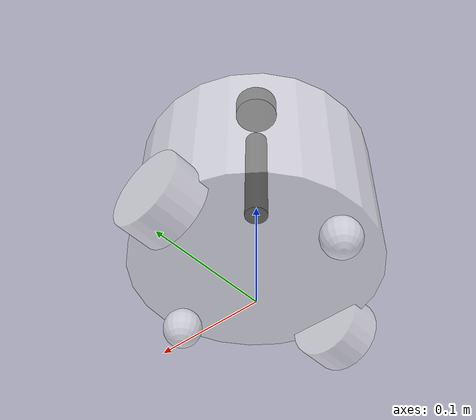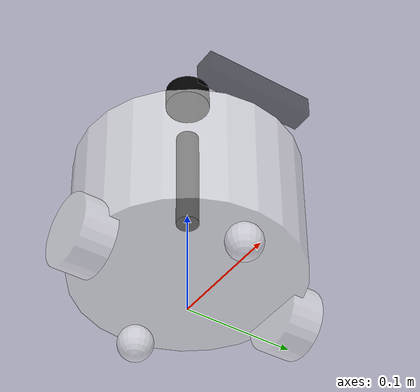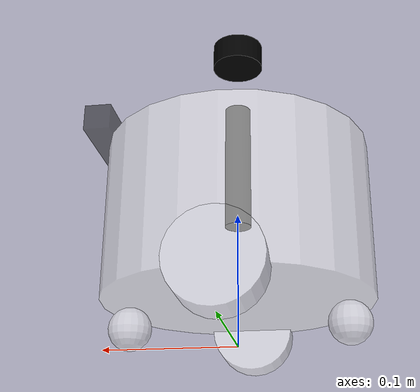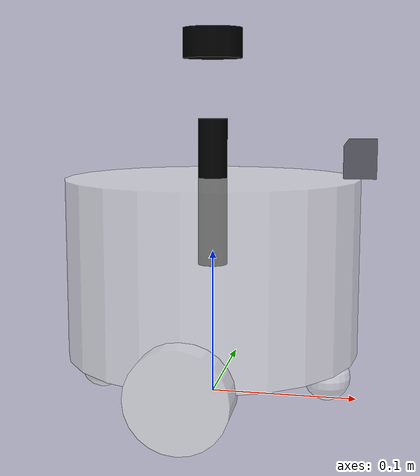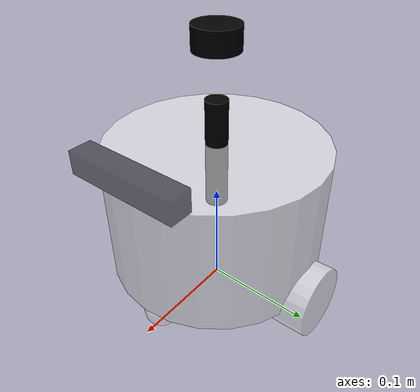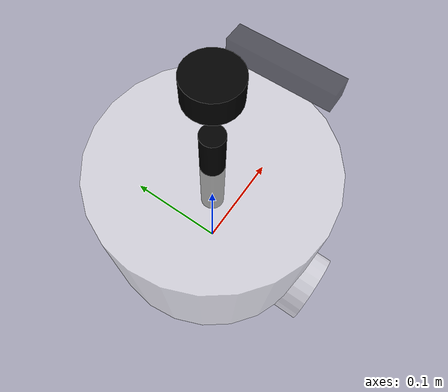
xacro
<?xml version="1.0"?>
<robot xmlns:xacro="http://www.ros.org/wiki/xacro" name="lykbot">

<xacro:include filename="$(find lykbot_dstion)/urdf/lykbot/base.urdf.xacro"/>
<!-- 这是传感器的部件 -->
<xacro:include filename="$(find lykbot_dstion)/urdf/lykbot/sensor/imu.urdf.xacro"/>
<xacro:include filename="$(find lykbot_dstion)/urdf/lykbot/sensor/camera.urdf.xacro"/>
<xacro:include filename="$(find lykbot_dstion)/urdf/lykbot/sensor/laser.urdf.xacro"/>
<xacro:include filename="$(find lykbot_dstion)/urdf/lykbot/actuator/wheel.urdf.xacro"/>
<xacro:include filename="$(find lykbot_dstion)/urdf/lykbot/actuator/caster.urdf.xacro"/>
<xacro:wheel_xacro wheel_name="left_wheel" xyz="0 0.10 -0.06"/>
<xacro:wheel_xacro wheel_name="right_wheel" xyz="0 -0.10 -0.06"/>
<xacro:caster_xacro caster_name="left_caster" xyz="0.08 0.0 -0.076"/>
<xacro:caster_xacro caster_name="right_caster" xyz="-0.08 0.0 -0.076"/>

<xacro:base_xacro length="0.12" radius="0.10"/>

<xacro:imu_xacro xyz="0.0 0.0 0.02"/>
<xacro:camera_xacro xyz="0.10 0.0 0.075"/>
<xacro:laser_xacro xyz="0.0 0.0 0.10"/>

</robot>

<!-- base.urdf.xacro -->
<robot xmlns:xacro="http://www.ros.org/wiki/xacro">
    <xacro:macro name = "base_xacro" params="length radius">
        <link name="base_footprint" />

            <!-- 机器人身体的部分-->
        <link name="base_link">
            <visual>
                <!-- 沿着自己几何中心的偏移量 -->
                <origin xyz="0.0 0.0 0.0" rpy="0.0 0.0 0.0"/>
                <!-- 几何形状 -->
                <geometry>
                <!-- 这是一个圆柱体，半径为10cm，高度为12cm -->
                    <cylinder radius="${radius}" length="${length}"/>
                </geometry>
                <!-- 这是材质和颜色的描述 -->
                <material name="white">
                    <color rgba="1.0 1.0 1.0 0.5"/>
                </material>
            </visual>

        </link>
        <joint name="joint_name" type="fixed">
            <origin xyz="0.0 0.0 ${length/2.0+0.032-0.001}" rpy="0.0 0.0 0.0"/>
            <parent link="base_footprint"/>
            <child link="base_link"/>

        </joint>
    </xacro:macro>
</robot>

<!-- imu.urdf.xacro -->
<robot xmlns:xacro="http://www.ros.org/wiki/xacro">
   <xacro:include filename="$(find lykbot_dstion)/urdf/lykbot/common_inertia.xacro"/>
  <xacro:macro name = "imu_xacro" params="xyz">
   <!-- 这是机器人的imu部件 -->
        <link name="imu_link">
        <visual>
            <!-- 沿着自己几何中心的偏移量 -->
            <origin xyz="0.0 0.0 0.0" rpy="0.0 0.0 0.0"/>
            <!-- 几何形状 -->
            <geometry>
            <!-- 这是一个正方体 -->
                <box size="0.02 0.02 0.02"/>
            </geometry>
            <!-- 这是材质和颜色的描述 -->
            <material name="black">
                <color rgba="0.0 0.0 0.0 0.5"/>
            </material>
        </visual>
        <collision>
            <!-- 沿着自己几何中心的偏移量 -->
            <origin xyz="0.0 0.0 0.0" rpy="0.0 0.0 0.0"/>
            <!-- 几何形状 -->
            <geometry>
            <!-- 这是一个正方体 -->
                <box size="0.02 0.02 0.02"/>
            </geometry>
            <!-- 这是材质和颜色的描述 -->
            <material name="black">
                <color rgba="0.0 0.0 0.0 0.5"/>
            </material>

        </collision>
         <!-- 描述质量和惯性的 -->
            <xacro:box_inertia m="0.05" w="0.02" h="0.02" d="0.02"/>
    </link>
     <joint name="imu_joint" type="fixed">
        <origin xyz="${xyz}" rpy="0.0 0.0 0.0"/>
        <parent link="base_link"/>
        <child link="imu_link"/>

    </joint>
  </xacro:macro>

</robot>

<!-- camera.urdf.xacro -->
<robot xmlns:xacro="http://www.ros.org/wiki/xacro">
<xacro:include filename="$(find lykbot_dstion)/urdf/lykbot/common_inertia.xacro"/>

  <xacro:macro name = "camera_xacro" params="xyz">
   <!-- 这是机器人的摄像头的部件 -->
        <link name="camera_link">
        <visual>
            <!-- 沿着自己几何中心的偏移量 -->
            <origin xyz="0.0 0.0 0.0" rpy="0.0 0.0 0.0"/>
            <!-- 几何形状 -->
            <geometry>
            <!-- 这是一个正方体 -->
                <box size="0.02 0.10 0.02"/>
            </geometry>
            <!-- 这是材质和颜色的描述 -->
            <material name="black">
                <color rgba="0.0 0.0 0.0 0.5"/>
            </material>
        </visual>
        <collision>
            <!-- 沿着自己几何中心的偏移量 -->
            <origin xyz="0.0 0.0 0.0" rpy="0.0 0.0 0.0"/>
            <!-- 几何形状 -->
            <geometry>
            <!-- 这是一个正方体 -->
                <box size="0.02 0.10 0.02"/>
            </geometry>
            <!-- 这是材质和颜色的描述 -->
            <material name="black">
                <color rgba="0.0 0.0 0.0 0.5"/>
            </material>

        </collision>
         <!-- 描述质量和惯性的 -->
            <xacro:box_inertia m="0.1" w="0.02" h="0.10" d="0.12"/>
    </link>

     <joint name="camera_joint" type="fixed">
        <origin xyz="${xyz}" rpy="0.0 0.0 0.0"/>
        <parent link="base_link"/>
        <child link="camera_link"/>

    </joint>
  </xacro:macro>

</robot>

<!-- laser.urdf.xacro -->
<robot xmlns:xacro="http://www.ros.org/wiki/xacro">
<xacro:include filename="$(find lykbot_dstion)/urdf/lykbot/common_inertia.xacro"/>

  <xacro:macro name = "laser_xacro" params="xyz">
  <!-- 这是雷达的支撑杆 -->

    <link name="laser_cylinder_link">
        <visual>
            <!-- 沿着自己几何中心的偏移量 -->
            <origin xyz="0.0 0.0 0.0" rpy="0.0 0.0 0.0"/>
            <!-- 几何形状 -->
            <geometry>
            <!-- 这是一个圆柱 -->
                <cylinder radius="0.01" length="0.10"/>
            </geometry>
            <!-- 这是材质和颜色的描述 -->
            <material name="black">
                <color rgba="0.0 0.0 0.0 1.0"/>
            </material>
        </visual>
        <collision>
             <!-- 沿着自己几何中心的偏移量 -->
            <origin xyz="0.0 0.0 0.0" rpy="0.0 0.0 0.0"/>
            <!-- 几何形状 -->
            <geometry>
            <!-- 这是一个圆柱 -->
                <cylinder radius="0.01" length="0.10"/>
            </geometry>
            <!-- 这是材质和颜色的描述 -->
            <material name="black">
                <color rgba="0.0 0.0 0.0 1.0"/>
            </material>

        </collision>
                 <!-- 描述质量和惯性的 -->
            <xacro:cylinder_inertia m="0.05" r="0.01" h="0.10"/>

    </link>
    <!-- 这是机器人的雷达的部件 -->
    <link name="laser_link">
        <visual>
            <!-- 沿着自己几何中心的偏移量 -->
            <origin xyz="0.0 0.0 0.0" rpy="0.0 0.0 0.0"/>
            <!-- 几何形状 -->
            <geometry>
            <!-- 这是一个圆柱-->
                <cylinder radius="0.02" length="0.02"/>
            </geometry>
            <!-- 这是材质和颜色的描述 -->
            <material name="black">
                <color rgba="0.0 0.0 0.0 1.0"/>
            </material>
        </visual>
        <collision>
                       <!-- 沿着自己几何中心的偏移量 -->
            <origin xyz="0.0 0.0 0.0" rpy="0.0 0.0 0.0"/>
            <!-- 几何形状 -->
            <geometry>
            <!-- 这是一个圆柱-->
                <cylinder radius="0.02" length="0.02"/>
            </geometry>
            <!-- 这是材质和颜色的描述 -->
            <material name="black">
                <color rgba="0.0 0.0 0.0 1.0"/>
            </material>

        </collision>
                 <!-- 描述质量和惯性的 -->
            <xacro:cylinder_inertia m="0.05" r="0.02" h="0.02"/>
    </link>
    <joint name="laser_cylinder_joint" type="fixed">
        <origin xyz="0.0 0.0 0.05" rpy="0.0 0.0 0.0"/>
        <parent link="base_link"/>
        <child link="laser_cylinder_link"/>

    </joint>
     <joint name="laser_joint" type="fixed">
        <origin xyz="${xyz}" rpy="0.0 0.0 0.0"/>
        <parent link="laser_cylinder_link"/>
        <child link="laser_link"/>

    </joint>
  </xacro:macro>

</robot>

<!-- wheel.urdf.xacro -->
<robot xmlns:xacro="http://www.ros.org/wiki/xacro">

  <xacro:macro name = "wheel_xacro" params="wheel_name xyz">
   <!-- 这是机器人的imu部件 -->
        <link name="${wheel_name}_link">
        <visual>
            <!-- 沿着自己几何中心的偏移量 -->
            <origin xyz="0.0 0.0 0.0" rpy="1.59079 0.0 0.0"/>
            <!-- 几何形状 -->
            <geometry>
            <!-- 这是一个正方体 -->
               <cylinder radius="0.032" length="0.03"/>
            </geometry>
            <!-- 这是材质和颜色的描述 -->
            <material name="yellow">
                <color rgba="1.0 1.0 1.0 0.5"/>
            </material>
        </visual>
    </link>
     <joint name="${wheel_name}_joint" type="continuous">
        <origin xyz="${xyz}" rpy="0.0 0.0 0.0"/>
        <parent link="base_link"/>
        <child link="${wheel_name}_link"/>
        <axis xyz="0 1 0"/>
    </joint>
  </xacro:macro>

</robot>

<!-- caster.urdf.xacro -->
<robot xmlns:xacro="http://www.ros.org/wiki/xacro">

  <xacro:macro name = "caster_xacro" params="caster_name xyz">
   <!-- 这是机器人的imu部件 -->
        <link name="${caster_name}_link">
        <visual>
            <!-- 沿着自己几何中心的偏移量 -->
            <origin xyz="0.0 0.0 0.0" rpy="0.0 0.0 0.0"/>
            <!-- 几何形状 -->
            <geometry>
            <!-- 这是一个正方体 -->
               <sphere radius="0.016"/>
            </geometry>
            <!-- 这是材质和颜色的描述 -->
            <material name="yellow">
                <color rgba="1.0 1.0 1.0 0.5"/>
            </material>
        </visual>
    </link>
     <joint name="${caster_name}_joint" type="fixed">
        <origin xyz="${xyz}" rpy="0.0 0.0 0.0"/>
        <parent link="base_link"/>
        <child link="${caster_name}_link"/>

    </joint>
  </xacro:macro>

</robot>
